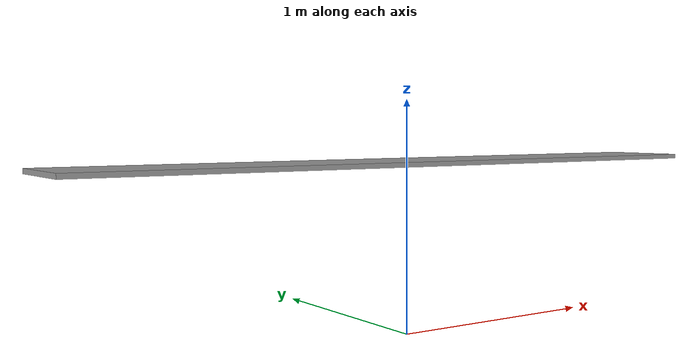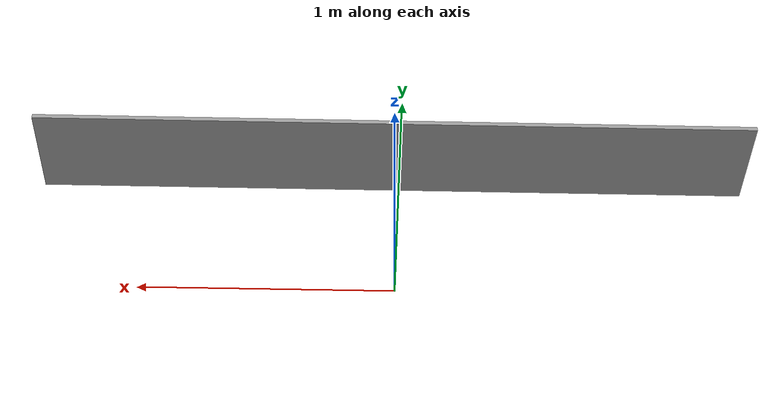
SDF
<?xml version='1.0'?>
<sdf version='1.6'>
  <model name='extra_heavy_duty_table_surface_only_collision'>
    <link name='link'>
      <pose frame=''>0 0 0 0 -0 0</pose>
      <inertial>
        <mass>53.5</mass>
        <pose frame=''>0 0 0 0 -0 0</pose>
        <inertia>
          <ixx>5.177409</ixx>
          <ixy>0</ixy>
          <ixz>0</ixz>
          <iyy>4.843753753</iyy>
          <iyz>0</iyz>
          <izz>4.843753753</izz>
        </inertia>
      </inertial>
      <self_collide>0</self_collide>
      <kinematic>0</kinematic>
      <visual name='visual1'>
        <pose frame=''>0 0 0.736 0 -0 0</pose>
        <geometry>
          <box>
            <size>3 0.4 0.02</size>
          </box>
        </geometry>
        <material>
          <script>
            <uri>file://media/materials/scripts/gazebo.material</uri>
            <name>Gazebo/Grey</name>
          </script>
          <ambient>0.3 0.3 0.3 1</ambient>
          <diffuse>0.7 0.7 0.7 1</diffuse>
          <specular>0.01 0.01 0.01 1</specular>
          <emissive>0 0 0 1</emissive>
          <shader type='vertex'>
            <normal_map>__default__</normal_map>
          </shader>
        </material>
        <cast_shadows>1</cast_shadows>
        <transparency>0</transparency>
      </visual>
      <collision name='surface'>
        <laser_retro>0</laser_retro>
        <max_contacts>10</max_contacts>
        <pose frame=''>0 0 0.736 0 -0 0</pose>
        <geometry>
          <box>
            <size>3 0.4 0.02</size>
          </box>
        </geometry>
        <surface>
          <friction>
            <ode>
              <mu>0.6</mu>
              <mu2>0.6</mu2>
              <fdir1>0 0 0</fdir1>
              <slip1>0</slip1>
              <slip2>0</slip2>
            </ode>
            <torsional>
              <coefficient>1</coefficient>
              <patch_radius>0</patch_radius>
              <surface_radius>0</surface_radius>
              <use_patch_radius>1</use_patch_radius>
              <ode>
                <slip>0</slip>
              </ode>
            </torsional>
          </friction>
          <bounce>
            <restitution_coefficient>0</restitution_coefficient>
            <threshold>1e+06</threshold>
          </bounce>
          <contact>
            <collide_without_contact>0</collide_without_contact>
            <collide_without_contact_bitmask>1</collide_without_contact_bitmask>
            <collide_bitmask>1</collide_bitmask>
            <ode>
              <soft_cfm>0</soft_cfm>
              <soft_erp>0.2</soft_erp>
              <kp>1e+13</kp>
              <kd>1</kd>
              <max_vel>0.01</max_vel>
              <min_depth>0</min_depth>
            </ode>
            <bullet>
              <split_impulse>1</split_impulse>
              <split_impulse_penetration_threshold>-0.01</split_impulse_penetration_threshold>
              <soft_cfm>0</soft_cfm>
              <soft_erp>0.2</soft_erp>
              <kp>1e+13</kp>
              <kd>1</kd>
            </bullet>
          </contact>
        </surface>
      </collision>
    </link>

    <frame name='top_center'>
      <pose frame='world'>0 0 0.7645 0 -0 0</pose>
    </frame>

    <static>1</static>
    <allow_auto_disable>1</allow_auto_disable>
  </model>
</sdf>
